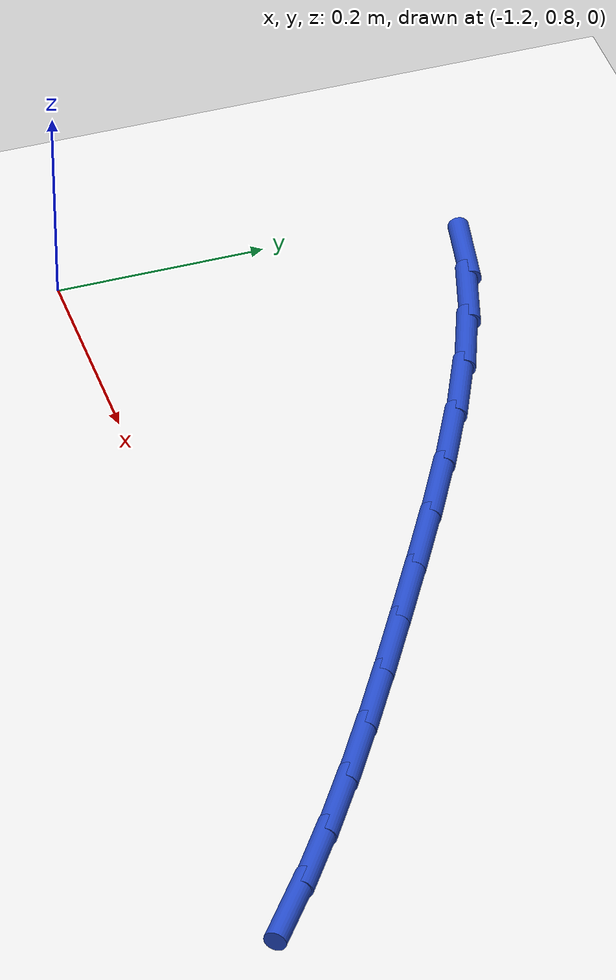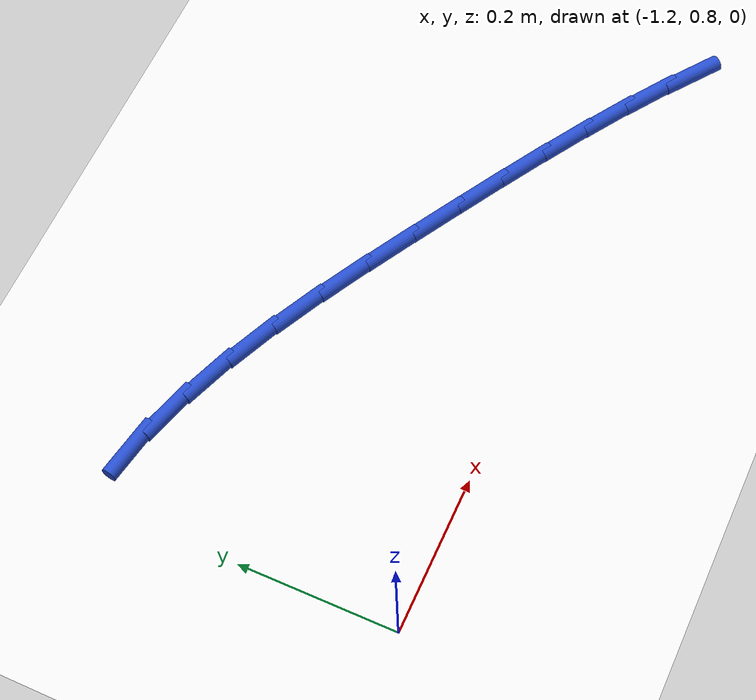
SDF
<sdf version="1.6">
 <world name="default">
  <model name="ground_plane">
   <static>1</static>
   <link name="link">
    <collision name="collision">
     <geometry><plane><normal>0 0 1</normal><size>100 100</size></plane></geometry>
     <surface><friction><ode><mu>100</mu><mu2>50</mu2></ode></friction></surface>
    </collision>
    <visual name="visual">
     <cast_shadows>0</cast_shadows>
     <geometry><plane><normal>0 0 1</normal><size>100 100</size></plane></geometry>
     <material>
      <script><uri>file://media/materials/scripts/gazebo.material</uri><name>Gazebo/WhiteGlow</name></script>
     </material>
    </visual>
   </link>
  </model>
  <model name="line">
   <link name="link_14">
    <pose>-0.36947119212822555 0.7606939088309088 0.01 0 1.57 -0.6436814771412027</pose>
    <collision name="collision">
     <geometry><cylinder><radius>0.01</radius><length>0.08</length></cylinder></geometry>
    </collision>
    <visual name="visual">
     <material>
      <script><name>Gazebo/Blue</name><uri>file://media/materials/scripts/gazebo.material</uri></script>
     </material>
     <geometry><cylinder><radius>0.01</radius><length>0.08</length></cylinder></geometry>
    </visual>
   </link>
   <link name="link_15">
    <pose>-0.41942475214756075 0.7981731589394737 0.01 0 1.57 -0.606631305135877</pose>
    <collision name="collision">
     <geometry><cylinder><radius>0.01</radius><length>0.08</length></cylinder></geometry>
    </collision>
    <visual name="visual">
     <material>
      <script><name>Gazebo/Blue</name><uri>file://media/materials/scripts/gazebo.material</uri></script>
     </material>
     <geometry><cylinder><radius>0.01</radius><length>0.08</length></cylinder></geometry>
    </visual>
   </link>
   <link name="link_16">
    <pose>-0.47159165790311836 0.8343726283466608 0.01 0 1.57 -0.5768669075906389</pose>
    <collision name="collision">
     <geometry><cylinder><radius>0.01</radius><length>0.08</length></cylinder></geometry>
    </collision>
    <visual name="visual">
     <material>
      <script><name>Gazebo/Blue</name><uri>file://media/materials/scripts/gazebo.material</uri></script>
     </material>
     <geometry><cylinder><radius>0.01</radius><length>0.08</length></cylinder></geometry>
    </visual>
   </link>
   <link name="link_17">
    <pose>-0.525771603304725 0.8696274997708104 0.01 0 1.57 -0.5540921235019746</pose>
    <collision name="collision">
     <geometry><cylinder><radius>0.01</radius><length>0.08</length></cylinder></geometry>
    </collision>
    <visual name="visual">
     <material>
      <script><name>Gazebo/Blue</name><uri>file://media/materials/scripts/gazebo.material</uri></script>
     </material>
     <geometry><cylinder><radius>0.01</radius><length>0.08</length></cylinder></geometry>
    </visual>
   </link>
   <link name="link_18">
    <pose>-0.581764282262208 0.9042729559302625 0.01 0 1.57 -0.5379671782481596</pose>
    <collision name="collision">
     <geometry><cylinder><radius>0.01</radius><length>0.08</length></cylinder></geometry>
    </collision>
    <visual name="visual">
     <material>
      <script><name>Gazebo/Blue</name><uri>file://media/materials/scripts/gazebo.material</uri></script>
     </material>
     <geometry><cylinder><radius>0.01</radius><length>0.08</length></cylinder></geometry>
    </visual>
   </link>
   <link name="link_19">
    <pose>-0.6393693886853941 0.9386441795433575 0.01 0 1.57 -0.528143441921372</pose>
    <collision name="collision">
     <geometry><cylinder><radius>0.01</radius><length>0.08</length></cylinder></geometry>
    </collision>
    <visual name="visual">
     <material>
      <script><name>Gazebo/Blue</name><uri>file://media/materials/scripts/gazebo.material</uri></script>
     </material>
     <geometry><cylinder><radius>0.01</radius><length>0.08</length></cylinder></geometry>
    </visual>
   </link>
   <link name="link_20">
    <pose>-0.6983866164841103 0.9730763533284351 0.01 0 1.57 -0.5235257879062526</pose>
    <collision name="collision">
     <geometry><cylinder><radius>0.01</radius><length>0.08</length></cylinder></geometry>
    </collision>
    <visual name="visual">
     <material>
      <script><name>Gazebo/Blue</name><uri>file://media/materials/scripts/gazebo.material</uri></script>
     </material>
     <geometry><cylinder><radius>0.01</radius><length>0.08</length></cylinder></geometry>
    </visual>
   </link>
   <link name="link_21">
    <pose>-0.7586082104170331 1.007839446463374 0.01 0 1.57 -0.5146799025044168</pose>
    <collision name="collision">
     <geometry><cylinder><radius>0.01</radius><length>0.08</length></cylinder></geometry>
    </collision>
    <visual name="visual">
     <material>
      <script><name>Gazebo/Blue</name><uri>file://media/materials/scripts/gazebo.material</uri></script>
     </material>
     <geometry><cylinder><radius>0.01</radius><length>0.08</length></cylinder></geometry>
    </visual>
   </link>
   <link name="link_22">
    <pose>-0.8197355710410317 1.0424081332110753 0.01 0 1.57 -0.49530599738299186</pose>
    <collision name="collision">
     <geometry><cylinder><radius>0.01</radius><length>0.08</length></cylinder></geometry>
    </collision>
    <visual name="visual">
     <material>
      <script><name>Gazebo/Blue</name><uri>file://media/materials/scripts/gazebo.material</uri></script>
     </material>
     <geometry><cylinder><radius>0.01</radius><length>0.08</length></cylinder></geometry>
    </visual>
   </link>
   <link name="link_23">
    <pose>-0.8814094075626416 1.0757257658420505 0.01 0 1.57 -0.4645558695432772</pose>
    <collision name="collision">
     <geometry><cylinder><radius>0.01</radius><length>0.08</length></cylinder></geometry>
    </collision>
    <visual name="visual">
     <material>
      <script><name>Gazebo/Blue</name><uri>file://media/materials/scripts/gazebo.material</uri></script>
     </material>
     <geometry><cylinder><radius>0.01</radius><length>0.08</length></cylinder></geometry>
    </visual>
   </link>
   <link name="link_24">
    <pose>-0.9432693198656029 1.106725985068323 0.01 0 1.57 -0.420937016828486</pose>
    <collision name="collision">
     <geometry><cylinder><radius>0.01</radius><length>0.08</length></cylinder></geometry>
    </collision>
    <visual name="visual">
     <material>
      <script><name>Gazebo/Blue</name><uri>file://media/materials/scripts/gazebo.material</uri></script>
     </material>
     <geometry><cylinder><radius>0.01</radius><length>0.08</length></cylinder></geometry>
    </visual>
   </link>
   <link name="link_25">
    <pose>-1.0049549078336553 1.134342431601916 0.01 0 1.57 -0.3621318643493022</pose>
    <collision name="collision">
     <geometry><cylinder><radius>0.01</radius><length>0.08</length></cylinder></geometry>
    </collision>
    <visual name="visual">
     <material>
      <script><name>Gazebo/Blue</name><uri>file://media/materials/scripts/gazebo.material</uri></script>
     </material>
     <geometry><cylinder><radius>0.01</radius><length>0.08</length></cylinder></geometry>
    </visual>
   </link>
   <link name="link_26">
    <pose>-1.066105771350538 1.157508746154852 0.01 0 1.57 -0.2849443932830691</pose>
    <collision name="collision">
     <geometry><cylinder><radius>0.01</radius><length>0.08</length></cylinder></geometry>
    </collision>
    <visual name="visual">
     <material>
      <script><name>Gazebo/Blue</name><uri>file://media/materials/scripts/gazebo.material</uri></script>
     </material>
     <geometry><cylinder><radius>0.01</radius><length>0.08</length></cylinder></geometry>
    </visual>
   </link>
   <link name="link_27">
    <pose>-1.1263615102999909 1.1751585694391544 0.01 0 1.57 -0.1854205252415084</pose>
    <collision name="collision">
     <geometry><cylinder><radius>0.01</radius><length>0.08</length></cylinder></geometry>
    </collision>
    <visual name="visual">
     <material>
      <script><name>Gazebo/Blue</name><uri>file://media/materials/scripts/gazebo.material</uri></script>
     </material>
     <geometry><cylinder><radius>0.01</radius><length>0.08</length></cylinder></geometry>
    </visual>
   </link>
  </model>
 </world>
</sdf>
